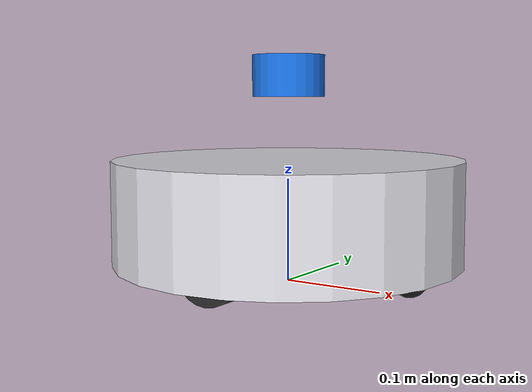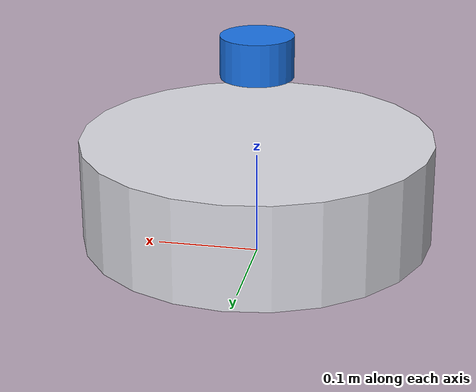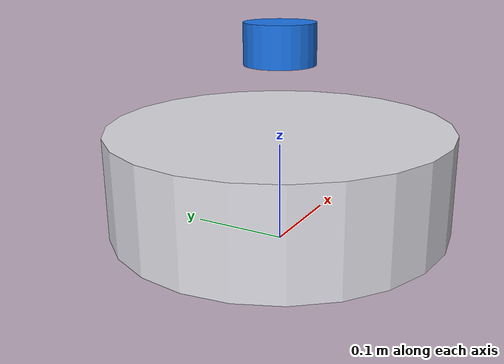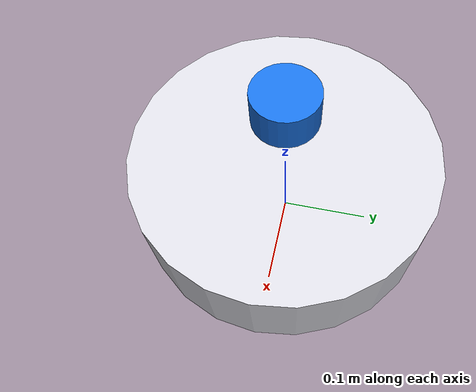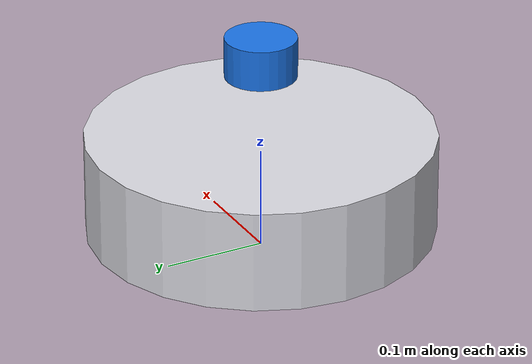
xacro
<?xml version="1.0"?>
<!-- GENERATED by tools/generate_models.py from config/robot_field.yaml. Do not edit; run `make generate`. -->
<robot name="field_robot" xmlns:xacro="http://www.ros.org/wiki/xacro">
  <xacro:arg name="backend" default="mujoco"/>  <!-- mujoco | mujoco_hil | real -->
  <xacro:arg name="device" default="/dev/eyesteer_mcu"/>
  <xacro:property name="wheel_radius" value="0.036"/>
  <xacro:property name="wheel_width" value="0.026"/>
  <xacro:property name="wheel_separation" value="0.235"/>
  <xacro:property name="wheel_x" value="0"/>
  <xacro:property name="wheel_mass" value="0.15"/>
  <xacro:property name="base_mass" value="3.5"/>
  <xacro:property name="base_height" value="0.1"/>
  <xacro:property name="base_z_center" value="0.034"/>
  <xacro:property name="base_radius" value="0.17"/>
  <xacro:property name="base_x_center" value="0"/>
  <xacro:property name="lidar_x" value="0"/>
  <xacro:property name="lidar_y" value="0"/>
  <xacro:property name="lidar_yaw" value="0"/>
  <xacro:property name="lidar_z" value="0.164"/>
  <xacro:property name="lidar_radius" value="0.035"/>
  <xacro:property name="lidar_height" value="0.04"/>
  <xacro:property name="imu_x" value="0"/>
  <xacro:property name="imu_y" value="0"/>
  <xacro:property name="imu_z" value="0.024"/>
  <xacro:property name="camera_x" value="0.15"/>
  <xacro:property name="camera_y" value="0"/>
  <xacro:property name="camera_z" value="0.114"/>
  <material name="body"><color rgba="0.85 0.85 0.88 1"/></material>
  <material name="dark"><color rgba="0.15 0.15 0.15 1"/></material>
  <material name="accent"><color rgba="0.1 0.45 0.9 1"/></material>
  <link name="base_footprint"/>
  <joint name="base_joint" type="fixed"><parent link="base_footprint"/><child link="base_link"/><origin xyz="0 0 ${wheel_radius}" rpy="0 0 0"/></joint>
  <link name="base_link">
    <visual><origin xyz="${base_x_center} 0 ${base_z_center}" rpy="0 0 0"/><geometry><cylinder radius="${base_radius}" length="${base_height}"/></geometry><material name="body"/></visual>
    <collision><origin xyz="${base_x_center} 0 ${base_z_center}" rpy="0 0 0"/><geometry><cylinder radius="${base_radius}" length="${base_height}"/></geometry></collision>
    <inertial><origin xyz="0 0 0.034" rpy="0 0 0"/><mass value="3.5"/><inertia ixx="2.820417e-02" ixy="0" ixz="0" iyy="2.820417e-02" iyz="0" izz="5.057500e-02"/></inertial>
  </link>
  <link name="left_wheel_link">
    <visual><origin xyz="0 0 0" rpy="-1.570796 0 0"/><geometry><cylinder radius="${wheel_radius}" length="${wheel_width}"/></geometry><material name="dark"/></visual>
    <collision><origin xyz="0 0 0" rpy="-1.570796 0 0"/><geometry><cylinder radius="${wheel_radius}" length="${wheel_width}"/></geometry></collision>
    <inertial><origin xyz="0 0 0" rpy="0 0 0"/><mass value="0.15"/><inertia ixx="5.705000e-05" ixy="0" ixz="0" iyy="9.720000e-05" iyz="0" izz="5.705000e-05"/></inertial>
  </link>
  <joint name="left_wheel_joint" type="continuous"><parent link="base_link"/><child link="left_wheel_link"/><origin xyz="${wheel_x} ${0.5*wheel_separation} 0" rpy="0 0 0"/><axis xyz="0 1 0"/></joint>
  <link name="right_wheel_link">
    <visual><origin xyz="0 0 0" rpy="-1.570796 0 0"/><geometry><cylinder radius="${wheel_radius}" length="${wheel_width}"/></geometry><material name="dark"/></visual>
    <collision><origin xyz="0 0 0" rpy="-1.570796 0 0"/><geometry><cylinder radius="${wheel_radius}" length="${wheel_width}"/></geometry></collision>
    <inertial><origin xyz="0 0 0" rpy="0 0 0"/><mass value="0.15"/><inertia ixx="5.705000e-05" ixy="0" ixz="0" iyy="9.720000e-05" iyz="0" izz="5.705000e-05"/></inertial>
  </link>
  <joint name="right_wheel_joint" type="continuous"><parent link="base_link"/><child link="right_wheel_link"/><origin xyz="${wheel_x} ${-0.5*wheel_separation} 0" rpy="0 0 0"/><axis xyz="0 1 0"/></joint>
  <link name="front_caster_link">
    <visual><geometry><sphere radius="0.018"/></geometry><material name="dark"/></visual>
    <collision><geometry><sphere radius="0.018"/></geometry></collision>
    <inertial><origin xyz="0 0 0" rpy="0 0 0"/><mass value="0.05"/><inertia ixx="6.480000e-06" ixy="0" ixz="0" iyy="6.480000e-06" iyz="0" izz="6.480000e-06"/></inertial>
  </link>
  <joint name="front_caster_joint" type="fixed"><parent link="base_link"/><child link="front_caster_link"/><origin xyz="0.13 0 -0.018" rpy="0 0 0"/></joint>
  <link name="rear_caster_link">
    <visual><geometry><sphere radius="0.018"/></geometry><material name="dark"/></visual>
    <collision><geometry><sphere radius="0.018"/></geometry></collision>
    <inertial><origin xyz="0 0 0" rpy="0 0 0"/><mass value="0.05"/><inertia ixx="6.480000e-06" ixy="0" ixz="0" iyy="6.480000e-06" iyz="0" izz="6.480000e-06"/></inertial>
  </link>
  <joint name="rear_caster_joint" type="fixed"><parent link="base_link"/><child link="rear_caster_link"/><origin xyz="-0.13 0 -0.018" rpy="0 0 0"/></joint>
  <link name="laser_frame">
    <visual><geometry><cylinder radius="${lidar_radius}" length="${lidar_height}"/></geometry><material name="accent"/></visual>
    <collision><geometry><cylinder radius="${lidar_radius}" length="${lidar_height}"/></geometry></collision>
    <inertial><origin xyz="0 0 0" rpy="0 0 0"/><mass value="0.17"/><inertia ixx="7.472917e-05" ixy="0" ixz="0" iyy="7.472917e-05" iyz="0" izz="1.041250e-04"/></inertial>
  </link>
  <joint name="laser_joint" type="fixed"><parent link="base_link"/><child link="laser_frame"/><origin xyz="${lidar_x} ${lidar_y} ${lidar_z}" rpy="0 0 ${lidar_yaw}"/></joint>
  <link name="imu_link"/>
  <joint name="imu_joint" type="fixed"><parent link="base_link"/><child link="imu_link"/><origin xyz="${imu_x} ${imu_y} ${imu_z}" rpy="0 0 0"/></joint>
  <link name="camera_link"/>
  <joint name="camera_joint" type="fixed"><parent link="base_link"/><child link="camera_link"/><origin xyz="${camera_x} ${camera_y} ${camera_z}" rpy="0 0 0"/></joint>
  <link name="camera_optical_frame"/>
  <joint name="camera_optical_joint" type="fixed"><parent link="camera_link"/><child link="camera_optical_frame"/><origin xyz="0 0 0" rpy="-1.570796 0 -1.570796"/></joint>
  <xacro:if value="${'$(arg backend)' in ['real', 'mujoco_hil']}">
  <ros2_control name="field_robot_system" type="system">
    <hardware>
      <plugin>diffdrive_arduino/DiffDriveArduinoHardware</plugin>
      <param name="left_wheel_name">left_wheel_joint</param>
      <param name="right_wheel_name">right_wheel_joint</param>
      <param name="loop_rate">50</param>
      <param name="device">$(arg device)</param>
      <param name="baud_rate">57600</param>
      <param name="timeout_ms">1000</param>
      <param name="enc_counts_per_rev">1320</param>
      <param name="pid_p">20</param>
      <param name="pid_d">12</param>
      <param name="pid_i">0</param>
      <param name="pid_o">50</param>
    </hardware>
    <joint name="left_wheel_joint">
      <command_interface name="velocity"><param name="min">-20</param><param name="max">20</param></command_interface>
      <state_interface name="position"/>
      <state_interface name="velocity"/>
    </joint>
    <joint name="right_wheel_joint">
      <command_interface name="velocity"><param name="min">-20</param><param name="max">20</param></command_interface>
      <state_interface name="position"/>
      <state_interface name="velocity"/>
    </joint>
  </ros2_control>
  </xacro:if>
</robot>
